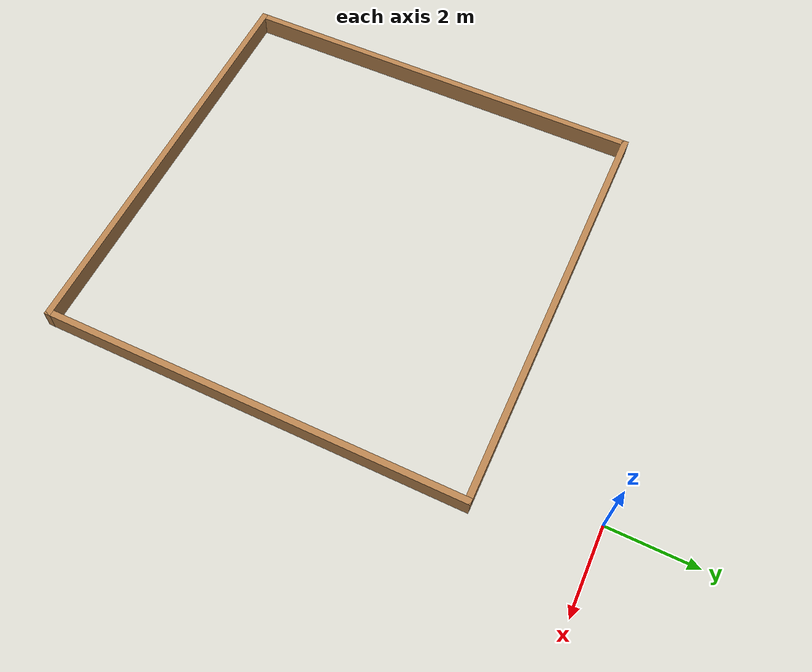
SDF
<?xml version='1.0'?>
<sdf version='1.7'>
  <model name='wall_square10x10'>
    <pose>-4.08 -6.258 0 0 -0 0</pose>
    <link name='Wall_10'>
      <collision name='Wall_10_Collision'>
        <geometry>
          <box>
            <size>10 0.15 0.5</size>
          </box>
        </geometry>
        <pose>0 0 0.25 0 -0 0</pose>
      </collision>
      <visual name='Wall_10_Visual'>
        <pose>0 0 0.25 0 -0 0</pose>
        <geometry>
          <box>
            <size>10 0.15 0.5</size>
          </box>
        </geometry>
        <material>
          <script>
            <uri>file://media/materials/scripts/gazebo.material</uri>
            <name>Gazebo/Wood</name>
          </script>
          <ambient>1 1 1 1</ambient>
        </material>
        <meta>
          <layer>0</layer>
        </meta>
      </visual>
      <pose>0 -6.183 0 0 -0 3.14159</pose>
    </link>
    <link name='Wall_6'>
      <collision name='Wall_6_Collision'>
        <geometry>
          <box>
            <size>10 0.15 0.5</size>
          </box>
        </geometry>
        <pose>0 0 0.25 0 -0 0</pose>
      </collision>
      <visual name='Wall_6_Visual'>
        <pose>0 0 0.25 0 -0 0</pose>
        <geometry>
          <box>
            <size>10 0.15 0.5</size>
          </box>
        </geometry>
        <material>
          <script>
            <uri>file://media/materials/scripts/gazebo.material</uri>
            <name>Gazebo/Wood</name>
          </script>
          <ambient>1 1 1 1</ambient>
        </material>
        <meta>
          <layer>0</layer>
        </meta>
      </visual>
      <pose>-4.925 -1.258 0 0 -0 -1.5708</pose>
    </link>
    <link name='Wall_8'>
      <collision name='Wall_8_Collision'>
        <geometry>
          <box>
            <size>10 0.15 0.5</size>
          </box>
        </geometry>
        <pose>0 0 0.25 0 -0 0</pose>
      </collision>
      <visual name='Wall_8_Visual'>
        <pose>0 0 0.25 0 -0 0</pose>
        <geometry>
          <box>
            <size>10 0.15 0.5</size>
          </box>
        </geometry>
        <material>
          <script>
            <uri>file://media/materials/scripts/gazebo.material</uri>
            <name>Gazebo/Wood</name>
          </script>
          <ambient>1 1 1 1</ambient>
        </material>
        <meta>
          <layer>0</layer>
        </meta>
      </visual>
      <pose>0 3.667 0 0 -0 0</pose>
    </link>
    <link name='Wall_9'>
      <collision name='Wall_9_Collision'>
        <geometry>
          <box>
            <size>10 0.15 0.5</size>
          </box>
        </geometry>
        <pose>0 0 0.25 0 -0 0</pose>
      </collision>
      <visual name='Wall_9_Visual'>
        <pose>0 0 0.25 0 -0 0</pose>
        <geometry>
          <box>
            <size>10 0.15 0.5</size>
          </box>
        </geometry>
        <material>
          <script>
            <uri>file://media/materials/scripts/gazebo.material</uri>
            <name>Gazebo/Wood</name>
          </script>
          <ambient>1 1 1 1</ambient>
        </material>
        <meta>
          <layer>0</layer>
        </meta>
      </visual>
      <pose>4.925 -1.258 0 0 -0 -1.5708</pose>
    </link>
    <static>1</static>
  </model>
</sdf>
